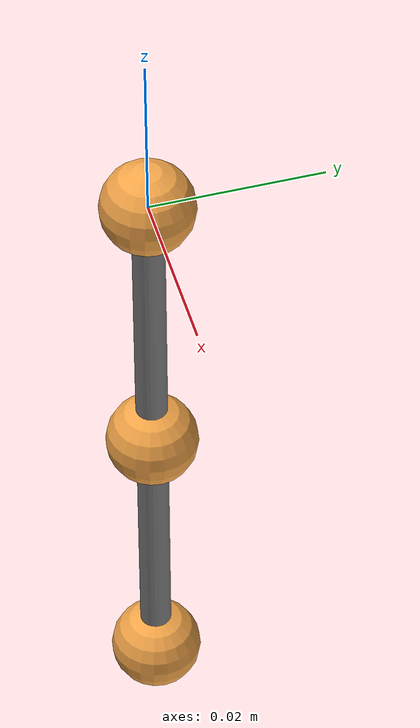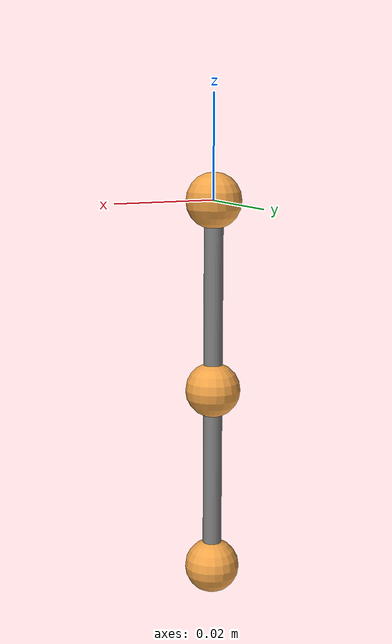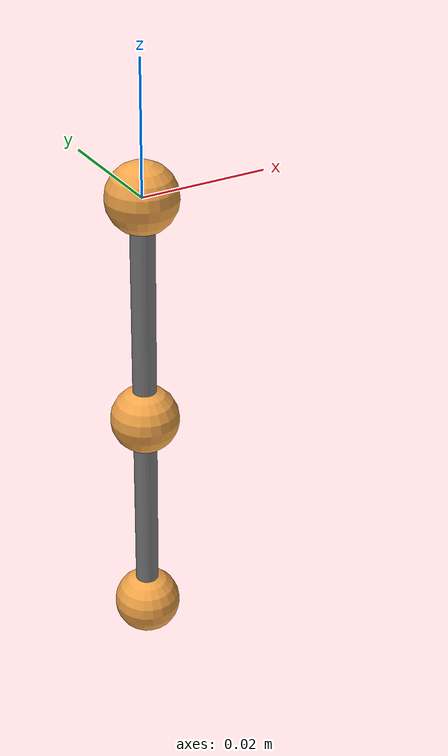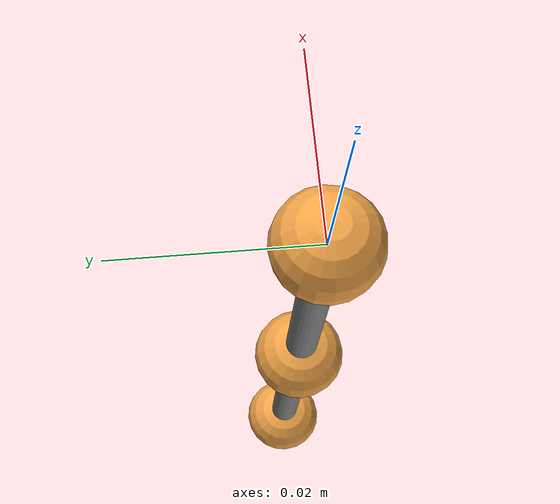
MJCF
<mujoco model="3D_UpperLimb">

  <compiler inertiafromgeom = "auto"
            angle 					= "radian" />

						<option  timestep  = '0.0001'
										iterations = '50'
										integrator = 'Euler'
										   gravity = "0 0 -9.81"
									   collision = 'all' >

							<flag energy = 'enable'/>

						</option>

  <asset>
    <!-- Texture of the surrounding sky box
         setting everything as white-ish color for better visualization -->
			<texture type="skybox" builtin="checker" rgb1="1 1 1" rgb2="1 1 1" width="200" height="200"  />
			<!-- Joint and Limb Color -->
			<material name="JointColor" 		 rgba="0.9569 0.6471 0.2824 1" />
 		 <material name="LimbColor" 		 rgba="0.5 0.5 0.5 1" />
 		 <material name="pointMassColor" rgba="0.75 0.0 0.75 1" />
 		 <material name="RefMassColor" 	 rgba="0.2 0.9 0.1 1.0" />

   </asset>

 	<visual>
 		<global glow="1.0" fovy="45" ipd="0.0"/>
 		<headlight specular="0.0 0.0 0.0" diffuse="1.0 1.0 1.0"/>
 	</visual>

  <worldbody>

    <body name='cameramover' mocap='true' pos='0 0 0'>
				<camera name='mycamera' pos='0.0 2.0 2.0' euler='1.5707 0 0'/>
  	</body>

    <!-- ============ UPPER ARM START =============== -->
		<body name='upperArm' pos='0 0 0' euler='0 0 0'>
			<inertial pos='0 0 -0.03225'     mass='1.595'         diaginertia='0.011917 0.011937 0.001325'/>
			<geom name="shoulderGEOM" type="sphere" pos="0 0 0" material="JointColor" size="0.005375" mass="0" />
			<joint name="shoulderFlexExt" ref="0" type="hinge" stiffness="0" pos="0 0 0" axis = "0 -1 0" />
			<joint name='shoulderAddAbd' ref='0'  type='hinge' stiffness='0' pos='0 0 0' axis='-1 0 0' />
			<joint name='shoulderMedLat' ref='0'  type='hinge' stiffness='0' pos='0 0 0' axis=' 0 0 1' />
			<geom type="cylinder" fromto="0 0 0 0 0 -0.03675" material="LimbColor" mass="0" size="0.0018375" />
			<body name="foreArm" pos="0 0 -0.03675" euler="0 0 0">
				<inertial pos="0 0 -0.014" mass="0.869" diaginertia="0.004765 0.004855 0.000472" />
				 <geom name="elbowGEOM" type="sphere" pos="0 0 0" material="JointColor" size="0.005375" mass="0" />
				 <joint name="elbow" ref="0" type="hinge" stiffness="0" pos="0 0 0" axis="0 -1 0" />
				 <geom type="cylinder" fromto="0 0 0 0 0 -0.036375" material="LimbColor" mass="0" size="0.0018375" />
				 <geom name="geom_EE" type="sphere" pos="0 0 -0.036375" material="JointColor" size="0.005375" mass="0" />

			</body>
			<!-- ============ FORE ARM END   =============== -->

	</body>
  </worldbody>

	<actuator>

		<motor joint = 'shoulderFlexExt' name = 'shoulderFlexExtTorqueMotor' forcelimited = 'false'/>
		<motor joint = 'shoulderAddAbd'  name = 'shoulderAddAbdTorqueMotor'  forcelimited = 'false'/>
		<motor joint = 'shoulderMedLat'  name = 'shoulderMedLatTorqueMotor'  forcelimited = 'false'/>
    <motor joint = 'elbow'           name = 'elbowTorqueMotor'           forcelimited = 'false'/>

  </actuator>

</mujoco>
